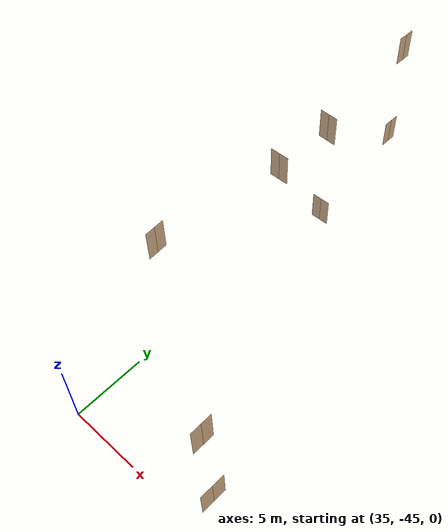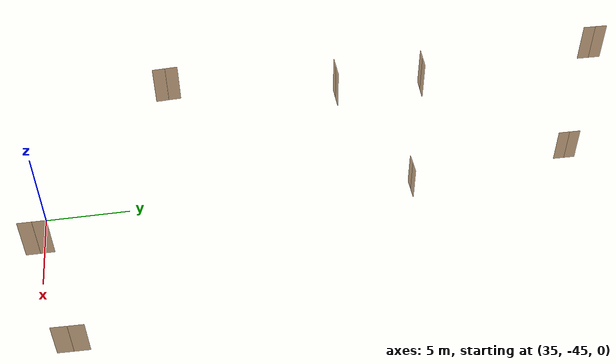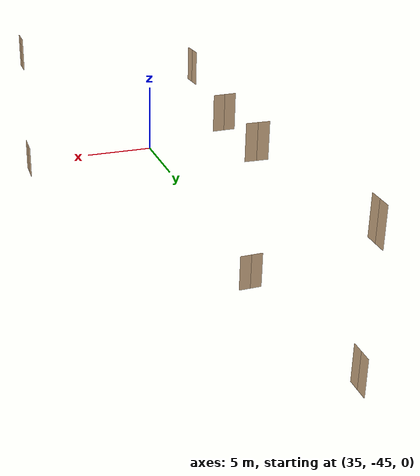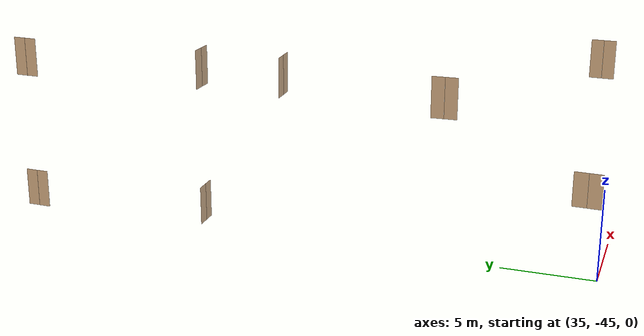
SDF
<sdf version="1.7">
 <world name="sim_world">
  <model name="TD1019AA">
   <pose>35.841424859408036 -22.755942036261796 0.0 0 0 -3.1322933793545134</pose>
   <link name="right">
    <pose>0.3469624931473078 0 1.11 0 0 0</pose>
    <visual name="right_visual">
     <geometry><box><size>0.6839249862946156 0.03 2.2</size></box></geometry>
     <material>
      <ambient>0.5 0.25 0 0.6</ambient>
      <diffuse>0.5 0.25 0 0.6</diffuse>
      <pbr><metal><metalness>0.0</metalness></metal></pbr>
     </material>
    </visual>
    <collision name="right_collision">
     <geometry><box><size>0.6839249862946156 0.03 2.2</size></box></geometry>
     <surface><contact><collide_bitmask>0x02</collide_bitmask></contact></surface>
    </collision>
    <inertial>
     <mass>50.0</mass>
     <inertia><ixx>20.17041666666667</ixx><iyy>22.11563911199205</iyy><izz>1.9527224453253758</izz></inertia>
    </inertial>
   </link>
   <joint name="right_joint" type="revolute">
    <parent>world</parent>
    <child>right</child>
    <axis><xyz>0 0 -1</xyz><limit><lower>0</lower><upper>1.57</upper></limit></axis>
    <pose>0.3469624931473078 0 0 0 0 0</pose>
   </joint>
   <link name="left">
    <pose>-0.3469624931473078 0 1.11 0 0 0</pose>
    <visual name="left_visual">
     <geometry><box><size>0.6839249862946156 0.03 2.2</size></box></geometry>
     <material>
      <ambient>0.5 0.25 0 0.6</ambient>
      <diffuse>0.5 0.25 0 0.6</diffuse>
      <pbr><metal><metalness>0.0</metalness></metal></pbr>
     </material>
    </visual>
    <collision name="left_collision">
     <geometry><box><size>0.6839249862946156 0.03 2.2</size></box></geometry>
     <surface><contact><collide_bitmask>0x02</collide_bitmask></contact></surface>
    </collision>
    <inertial>
     <mass>50.0</mass>
     <inertia><ixx>20.17041666666667</ixx><iyy>22.11563911199205</iyy><izz>1.9527224453253758</izz></inertia>
    </inertial>
   </link>
   <joint name="left_joint" type="revolute">
    <parent>world</parent>
    <child>left</child>
    <axis><xyz>0 0 -1</xyz><limit><lower>-1.57</lower><upper>0</upper></limit></axis>
    <pose>-0.3469624931473078 0 0 0 0 0</pose>
   </joint>
   <plugin name="register_component" filename="libregister_component.so">
    <component name="Door">
     <v_max_door>0.5</v_max_door>
     <a_max_door>0.3</a_max_door>
     <a_nom_door>0.15</a_nom_door>
     <dx_min_door>0.01</dx_min_door>
     <f_max_door>500.0</f_max_door>
     <ros_interface>true</ros_interface>
     <door name="TD1019AA" type="DoubleSwingDoor" left_joint_name="left_joint" right_joint_name="right_joint"/>
    </component>
   </plugin>
  </model>
  <model name="TD1021AA">
   <pose>34.61294872050826 -12.449338541510535 0.0 0 0 1.5546589964034163</pose>
   <link name="right">
    <pose>0.345297861169204 0 1.11 0 0 0</pose>
    <visual name="right_visual">
     <geometry><box><size>0.680595722338408 0.03 2.2</size></box></geometry>
     <material>
      <ambient>0.5 0.25 0 0.6</ambient>
      <diffuse>0.5 0.25 0 0.6</diffuse>
      <pbr><metal><metalness>0.0</metalness></metal></pbr>
     </material>
    </visual>
    <collision name="right_collision">
     <geometry><box><size>0.680595722338408 0.03 2.2</size></box></geometry>
     <surface><contact><collide_bitmask>0x02</collide_bitmask></contact></surface>
    </collision>
    <inertial>
     <mass>50.0</mass>
     <inertia><ixx>20.17041666666667</ixx><iyy>22.096710571938917</iyy><izz>1.9337939052722477</izz></inertia>
    </inertial>
   </link>
   <joint name="right_joint" type="revolute">
    <parent>world</parent>
    <child>right</child>
    <axis><xyz>0 0 -1</xyz><limit><lower>0</lower><upper>1.57</upper></limit></axis>
    <pose>0.345297861169204 0 0 0 0 0</pose>
   </joint>
   <link name="left">
    <pose>-0.345297861169204 0 1.11 0 0 0</pose>
    <visual name="left_visual">
     <geometry><box><size>0.680595722338408 0.03 2.2</size></box></geometry>
     <material>
      <ambient>0.5 0.25 0 0.6</ambient>
      <diffuse>0.5 0.25 0 0.6</diffuse>
      <pbr><metal><metalness>0.0</metalness></metal></pbr>
     </material>
    </visual>
    <collision name="left_collision">
     <geometry><box><size>0.680595722338408 0.03 2.2</size></box></geometry>
     <surface><contact><collide_bitmask>0x02</collide_bitmask></contact></surface>
    </collision>
    <inertial>
     <mass>50.0</mass>
     <inertia><ixx>20.17041666666667</ixx><iyy>22.096710571938917</iyy><izz>1.9337939052722477</izz></inertia>
    </inertial>
   </link>
   <joint name="left_joint" type="revolute">
    <parent>world</parent>
    <child>left</child>
    <axis><xyz>0 0 -1</xyz><limit><lower>-1.57</lower><upper>0</upper></limit></axis>
    <pose>-0.345297861169204 0 0 0 0 0</pose>
   </joint>
   <plugin name="register_component" filename="libregister_component.so">
    <component name="Door">
     <v_max_door>0.5</v_max_door>
     <a_max_door>0.3</a_max_door>
     <a_nom_door>0.15</a_nom_door>
     <dx_min_door>0.01</dx_min_door>
     <f_max_door>500.0</f_max_door>
     <ros_interface>true</ros_interface>
     <door name="TD1021AA" type="DoubleSwingDoor" left_joint_name="left_joint" right_joint_name="right_joint"/>
    </component>
   </plugin>
  </model>
  <model name="TD1001CP3">
   <pose>44.923985080942614 -43.22283079088796 0.0 0 0 -1.6010615391563061</pose>
   <link name="right">
    <pose>0.44651550188680655 0 1.11 0 0 0</pose>
    <visual name="right_visual">
     <geometry><box><size>0.8830310037736131 0.03 2.2</size></box></geometry>
     <material>
      <ambient>0.5 0.25 0 0.6</ambient>
      <diffuse>0.5 0.25 0 0.6</diffuse>
      <pbr><metal><metalness>0.0</metalness></metal></pbr>
     </material>
    </visual>
    <collision name="right_collision">
     <geometry><box><size>0.8830310037736131 0.03 2.2</size></box></geometry>
     <surface><contact><collide_bitmask>0x02</collide_bitmask></contact></surface>
    </collision>
    <inertial>
     <mass>50.0</mass>
     <inertia><ixx>20.17041666666667</ixx><iyy>23.415598973439316</iyy><izz>3.2526823067726447</izz></inertia>
    </inertial>
   </link>
   <joint name="right_joint" type="revolute">
    <parent>world</parent>
    <child>right</child>
    <axis><xyz>0 0 -1</xyz><limit><lower>0</lower><upper>1.57</upper></limit></axis>
    <pose>0.44651550188680655 0 0 0 0 0</pose>
   </joint>
   <link name="left">
    <pose>-0.44651550188680655 0 1.11 0 0 0</pose>
    <visual name="left_visual">
     <geometry><box><size>0.8830310037736131 0.03 2.2</size></box></geometry>
     <material>
      <ambient>0.5 0.25 0 0.6</ambient>
      <diffuse>0.5 0.25 0 0.6</diffuse>
      <pbr><metal><metalness>0.0</metalness></metal></pbr>
     </material>
    </visual>
    <collision name="left_collision">
     <geometry><box><size>0.8830310037736131 0.03 2.2</size></box></geometry>
     <surface><contact><collide_bitmask>0x02</collide_bitmask></contact></surface>
    </collision>
    <inertial>
     <mass>50.0</mass>
     <inertia><ixx>20.17041666666667</ixx><iyy>23.415598973439316</iyy><izz>3.2526823067726447</izz></inertia>
    </inertial>
   </link>
   <joint name="left_joint" type="revolute">
    <parent>world</parent>
    <child>left</child>
    <axis><xyz>0 0 -1</xyz><limit><lower>-1.57</lower><upper>0</upper></limit></axis>
    <pose>-0.44651550188680655 0 0 0 0 0</pose>
   </joint>
   <plugin name="register_component" filename="libregister_component.so">
    <component name="Door">
     <v_max_door>0.5</v_max_door>
     <a_max_door>0.3</a_max_door>
     <a_nom_door>0.15</a_nom_door>
     <dx_min_door>0.01</dx_min_door>
     <f_max_door>500.0</f_max_door>
     <ros_interface>true</ros_interface>
     <door name="TD1001CP3" type="DoubleSwingDoor" left_joint_name="left_joint" right_joint_name="right_joint"/>
    </component>
   </plugin>
  </model>
  <model name="TD1103">
   <pose>34.555627519648425 -12.380845192821173 8.0 0 0 1.554301982959703</pose>
   <link name="right">
    <pose>0.3385902432608419 0 1.11 0 0 0</pose>
    <visual name="right_visual">
     <geometry><box><size>0.6671804865216838 0.03 2.2</size></box></geometry>
     <material>
      <ambient>0.5 0.25 0 0.6</ambient>
      <diffuse>0.5 0.25 0 0.6</diffuse>
      <pbr><metal><metalness>0.0</metalness></metal></pbr>
     </material>
    </visual>
    <collision name="right_collision">
     <geometry><box><size>0.6671804865216838 0.03 2.2</size></box></geometry>
     <surface><contact><collide_bitmask>0x02</collide_bitmask></contact></surface>
    </collision>
    <inertial>
     <mass>50.0</mass>
     <inertia><ixx>20.17041666666667</ixx><iyy>22.0213741733138</iyy><izz>1.8584575066471283</izz></inertia>
    </inertial>
   </link>
   <joint name="right_joint" type="revolute">
    <parent>world</parent>
    <child>right</child>
    <axis><xyz>0 0 -1</xyz><limit><lower>0</lower><upper>1.57</upper></limit></axis>
    <pose>0.3385902432608419 0 0 0 0 0</pose>
   </joint>
   <link name="left">
    <pose>-0.3385902432608419 0 1.11 0 0 0</pose>
    <visual name="left_visual">
     <geometry><box><size>0.6671804865216838 0.03 2.2</size></box></geometry>
     <material>
      <ambient>0.5 0.25 0 0.6</ambient>
      <diffuse>0.5 0.25 0 0.6</diffuse>
      <pbr><metal><metalness>0.0</metalness></metal></pbr>
     </material>
    </visual>
    <collision name="left_collision">
     <geometry><box><size>0.6671804865216838 0.03 2.2</size></box></geometry>
     <surface><contact><collide_bitmask>0x02</collide_bitmask></contact></surface>
    </collision>
    <inertial>
     <mass>50.0</mass>
     <inertia><ixx>20.17041666666667</ixx><iyy>22.0213741733138</iyy><izz>1.8584575066471283</izz></inertia>
    </inertial>
   </link>
   <joint name="left_joint" type="revolute">
    <parent>world</parent>
    <child>left</child>
    <axis><xyz>0 0 -1</xyz><limit><lower>-1.57</lower><upper>0</upper></limit></axis>
    <pose>-0.3385902432608419 0 0 0 0 0</pose>
   </joint>
   <plugin name="register_component" filename="libregister_component.so">
    <component name="Door">
     <v_max_door>0.5</v_max_door>
     <a_max_door>0.3</a_max_door>
     <a_nom_door>0.15</a_nom_door>
     <dx_min_door>0.01</dx_min_door>
     <f_max_door>500.0</f_max_door>
     <ros_interface>true</ros_interface>
     <door name="TD1103" type="DoubleSwingDoor" left_joint_name="left_joint" right_joint_name="right_joint"/>
    </component>
   </plugin>
  </model>
  <model name="TD1102">
   <pose>35.83267012767112 -22.75507687068682 8.0 0 0 3.096863950006291</pose>
   <link name="right">
    <pose>0.3351213235833892 0 1.11 0 0 0</pose>
    <visual name="right_visual">
     <geometry><box><size>0.6602426471667784 0.03 2.2</size></box></geometry>
     <material>
      <ambient>0.5 0.25 0 0.6</ambient>
      <diffuse>0.5 0.25 0 0.6</diffuse>
      <pbr><metal><metalness>0.0</metalness></metal></pbr>
     </material>
    </visual>
    <collision name="right_collision">
     <geometry><box><size>0.6602426471667784 0.03 2.2</size></box></geometry>
     <surface><contact><collide_bitmask>0x02</collide_bitmask></contact></surface>
    </collision>
    <inertial>
     <mass>50.0</mass>
     <inertia><ixx>20.17041666666667</ixx><iyy>21.983001471407484</iyy><izz>1.820084804740813</izz></inertia>
    </inertial>
   </link>
   <joint name="right_joint" type="revolute">
    <parent>world</parent>
    <child>right</child>
    <axis><xyz>0 0 -1</xyz><limit><lower>0</lower><upper>1.57</upper></limit></axis>
    <pose>0.3351213235833892 0 0 0 0 0</pose>
   </joint>
   <link name="left">
    <pose>-0.3351213235833892 0 1.11 0 0 0</pose>
    <visual name="left_visual">
     <geometry><box><size>0.6602426471667784 0.03 2.2</size></box></geometry>
     <material>
      <ambient>0.5 0.25 0 0.6</ambient>
      <diffuse>0.5 0.25 0 0.6</diffuse>
      <pbr><metal><metalness>0.0</metalness></metal></pbr>
     </material>
    </visual>
    <collision name="left_collision">
     <geometry><box><size>0.6602426471667784 0.03 2.2</size></box></geometry>
     <surface><contact><collide_bitmask>0x02</collide_bitmask></contact></surface>
    </collision>
    <inertial>
     <mass>50.0</mass>
     <inertia><ixx>20.17041666666667</ixx><iyy>21.983001471407484</iyy><izz>1.820084804740813</izz></inertia>
    </inertial>
   </link>
   <joint name="left_joint" type="revolute">
    <parent>world</parent>
    <child>left</child>
    <axis><xyz>0 0 -1</xyz><limit><lower>-1.57</lower><upper>0</upper></limit></axis>
    <pose>-0.3351213235833892 0 0 0 0 0</pose>
   </joint>
   <plugin name="register_component" filename="libregister_component.so">
    <component name="Door">
     <v_max_door>0.5</v_max_door>
     <a_max_door>0.3</a_max_door>
     <a_nom_door>0.15</a_nom_door>
     <dx_min_door>0.01</dx_min_door>
     <f_max_door>500.0</f_max_door>
     <ros_interface>true</ros_interface>
     <door name="TD1102" type="DoubleSwingDoor" left_joint_name="left_joint" right_joint_name="right_joint"/>
    </component>
   </plugin>
  </model>
  <model name="TD11011">
   <pose>35.833533645719356 -27.57744005211769 8.0 0 0 0.011425657835920758</pose>
   <link name="right">
    <pose>0.33480463329190085 0 1.11 0 0 0</pose>
    <visual name="right_visual">
     <geometry><box><size>0.6596092665838017 0.03 2.2</size></box></geometry>
     <material>
      <ambient>0.5 0.25 0 0.6</ambient>
      <diffuse>0.5 0.25 0 0.6</diffuse>
      <pbr><metal><metalness>0.0</metalness></metal></pbr>
     </material>
    </visual>
    <collision name="right_collision">
     <geometry><box><size>0.6596092665838017 0.03 2.2</size></box></geometry>
     <surface><contact><collide_bitmask>0x02</collide_bitmask></contact></surface>
    </collision>
    <inertial>
     <mass>50.0</mass>
     <inertia><ixx>20.17041666666667</ixx><iyy>21.979518269013425</iyy><izz>1.8166016023467535</izz></inertia>
    </inertial>
   </link>
   <joint name="right_joint" type="revolute">
    <parent>world</parent>
    <child>right</child>
    <axis><xyz>0 0 -1</xyz><limit><lower>0</lower><upper>1.57</upper></limit></axis>
    <pose>0.33480463329190085 0 0 0 0 0</pose>
   </joint>
   <link name="left">
    <pose>-0.33480463329190085 0 1.11 0 0 0</pose>
    <visual name="left_visual">
     <geometry><box><size>0.6596092665838017 0.03 2.2</size></box></geometry>
     <material>
      <ambient>0.5 0.25 0 0.6</ambient>
      <diffuse>0.5 0.25 0 0.6</diffuse>
      <pbr><metal><metalness>0.0</metalness></metal></pbr>
     </material>
    </visual>
    <collision name="left_collision">
     <geometry><box><size>0.6596092665838017 0.03 2.2</size></box></geometry>
     <surface><contact><collide_bitmask>0x02</collide_bitmask></contact></surface>
    </collision>
    <inertial>
     <mass>50.0</mass>
     <inertia><ixx>20.17041666666667</ixx><iyy>21.979518269013425</iyy><izz>1.8166016023467535</izz></inertia>
    </inertial>
   </link>
   <joint name="left_joint" type="revolute">
    <parent>world</parent>
    <child>left</child>
    <axis><xyz>0 0 -1</xyz><limit><lower>-1.57</lower><upper>0</upper></limit></axis>
    <pose>-0.33480463329190085 0 0 0 0 0</pose>
   </joint>
   <plugin name="register_component" filename="libregister_component.so">
    <component name="Door">
     <v_max_door>0.5</v_max_door>
     <a_max_door>0.3</a_max_door>
     <a_nom_door>0.15</a_nom_door>
     <dx_min_door>0.01</dx_min_door>
     <f_max_door>500.0</f_max_door>
     <ros_interface>true</ros_interface>
     <door name="TD11011" type="DoubleSwingDoor" left_joint_name="left_joint" right_joint_name="right_joint"/>
    </component>
   </plugin>
  </model>
  <model name="TD11012">
   <pose>34.533668379086635 -36.786047453060874 8.0 0 0 -1.5157225496062487</pose>
   <link name="right">
    <pose>0.3428249214216214 0 1.11 0 0 0</pose>
    <visual name="right_visual">
     <geometry><box><size>0.6756498428432428 0.03 2.2</size></box></geometry>
     <material>
      <ambient>0.5 0.25 0 0.6</ambient>
      <diffuse>0.5 0.25 0 0.6</diffuse>
      <pbr><metal><metalness>0.0</metalness></metal></pbr>
     </material>
    </visual>
    <collision name="right_collision">
     <geometry><box><size>0.6756498428432428 0.03 2.2</size></box></geometry>
     <surface><contact><collide_bitmask>0x02</collide_bitmask></contact></surface>
    </collision>
    <inertial>
     <mass>50.0</mass>
     <inertia><ixx>20.17041666666667</ixx><iyy>22.068761292225414</iyy><izz>1.905844625558745</izz></inertia>
    </inertial>
   </link>
   <joint name="right_joint" type="revolute">
    <parent>world</parent>
    <child>right</child>
    <axis><xyz>0 0 1</xyz><limit><lower>0</lower><upper>1.57</upper></limit></axis>
    <pose>0.3428249214216214 0 0 0 0 0</pose>
   </joint>
   <link name="left">
    <pose>-0.3428249214216214 0 1.11 0 0 0</pose>
    <visual name="left_visual">
     <geometry><box><size>0.6756498428432428 0.03 2.2</size></box></geometry>
     <material>
      <ambient>0.5 0.25 0 0.6</ambient>
      <diffuse>0.5 0.25 0 0.6</diffuse>
      <pbr><metal><metalness>0.0</metalness></metal></pbr>
     </material>
    </visual>
    <collision name="left_collision">
     <geometry><box><size>0.6756498428432428 0.03 2.2</size></box></geometry>
     <surface><contact><collide_bitmask>0x02</collide_bitmask></contact></surface>
    </collision>
    <inertial>
     <mass>50.0</mass>
     <inertia><ixx>20.17041666666667</ixx><iyy>22.068761292225414</iyy><izz>1.905844625558745</izz></inertia>
    </inertial>
   </link>
   <joint name="left_joint" type="revolute">
    <parent>world</parent>
    <child>left</child>
    <axis><xyz>0 0 1</xyz><limit><lower>-1.57</lower><upper>0</upper></limit></axis>
    <pose>-0.3428249214216214 0 0 0 0 0</pose>
   </joint>
   <plugin name="register_component" filename="libregister_component.so">
    <component name="Door">
     <v_max_door>0.5</v_max_door>
     <a_max_door>0.3</a_max_door>
     <a_nom_door>0.15</a_nom_door>
     <dx_min_door>0.01</dx_min_door>
     <f_max_door>500.0</f_max_door>
     <ros_interface>true</ros_interface>
     <door name="TD11012" type="DoubleSwingDoor" left_joint_name="left_joint" right_joint_name="right_joint"/>
    </component>
   </plugin>
  </model>
  <model name="TD1118CP3">
   <pose>44.92416772290538 -43.43670355985003 8.0 0 0 -1.5785536027755687</pose>
   <link name="right">
    <pose>0.3422238934015113 0 1.11 0 0 0</pose>
    <visual name="right_visual">
     <geometry><box><size>0.6744477868030226 0.03 2.2</size></box></geometry>
     <material>
      <ambient>0.5 0.25 0 0.6</ambient>
      <diffuse>0.5 0.25 0 0.6</diffuse>
      <pbr><metal><metalness>0.0</metalness></metal></pbr>
     </material>
    </visual>
    <collision name="right_collision">
     <geometry><box><size>0.6744477868030226 0.03 2.2</size></box></geometry>
     <surface><contact><collide_bitmask>0x02</collide_bitmask></contact></surface>
    </collision>
    <inertial>
     <mass>50.0</mass>
     <inertia><ixx>20.17041666666667</ixx><iyy>22.061999238014568</iyy><izz>1.8990825713478978</izz></inertia>
    </inertial>
   </link>
   <joint name="right_joint" type="revolute">
    <parent>world</parent>
    <child>right</child>
    <axis><xyz>0 0 -1</xyz><limit><lower>0</lower><upper>1.57</upper></limit></axis>
    <pose>0.3422238934015113 0 0 0 0 0</pose>
   </joint>
   <link name="left">
    <pose>-0.3422238934015113 0 1.11 0 0 0</pose>
    <visual name="left_visual">
     <geometry><box><size>0.6744477868030226 0.03 2.2</size></box></geometry>
     <material>
      <ambient>0.5 0.25 0 0.6</ambient>
      <diffuse>0.5 0.25 0 0.6</diffuse>
      <pbr><metal><metalness>0.0</metalness></metal></pbr>
     </material>
    </visual>
    <collision name="left_collision">
     <geometry><box><size>0.6744477868030226 0.03 2.2</size></box></geometry>
     <surface><contact><collide_bitmask>0x02</collide_bitmask></contact></surface>
    </collision>
    <inertial>
     <mass>50.0</mass>
     <inertia><ixx>20.17041666666667</ixx><iyy>22.061999238014568</iyy><izz>1.8990825713478978</izz></inertia>
    </inertial>
   </link>
   <joint name="left_joint" type="revolute">
    <parent>world</parent>
    <child>left</child>
    <axis><xyz>0 0 -1</xyz><limit><lower>-1.57</lower><upper>0</upper></limit></axis>
    <pose>-0.3422238934015113 0 0 0 0 0</pose>
   </joint>
   <plugin name="register_component" filename="libregister_component.so">
    <component name="Door">
     <v_max_door>0.5</v_max_door>
     <a_max_door>0.3</a_max_door>
     <a_nom_door>0.15</a_nom_door>
     <dx_min_door>0.01</dx_min_door>
     <f_max_door>500.0</f_max_door>
     <ros_interface>true</ros_interface>
     <door name="TD1118CP3" type="DoubleSwingDoor" left_joint_name="left_joint" right_joint_name="right_joint"/>
    </component>
   </plugin>
  </model>
 </world>
</sdf>
